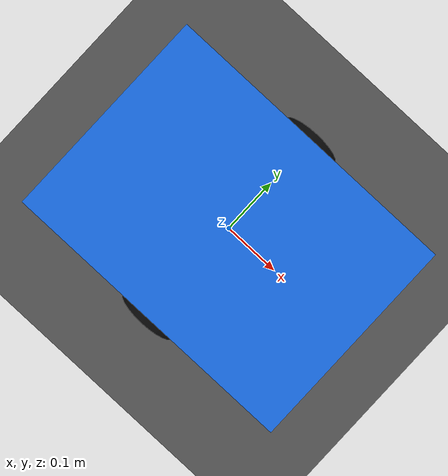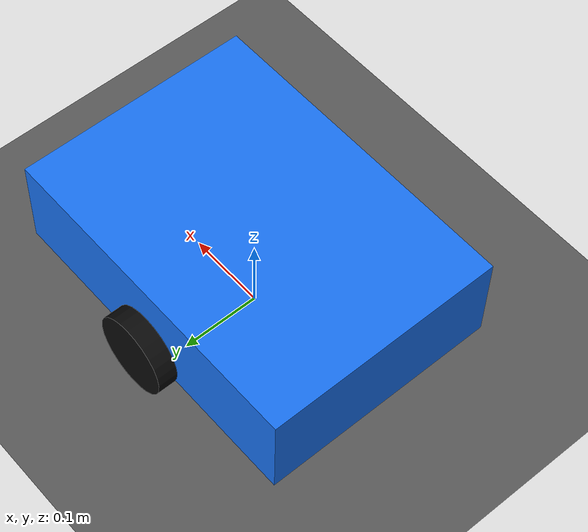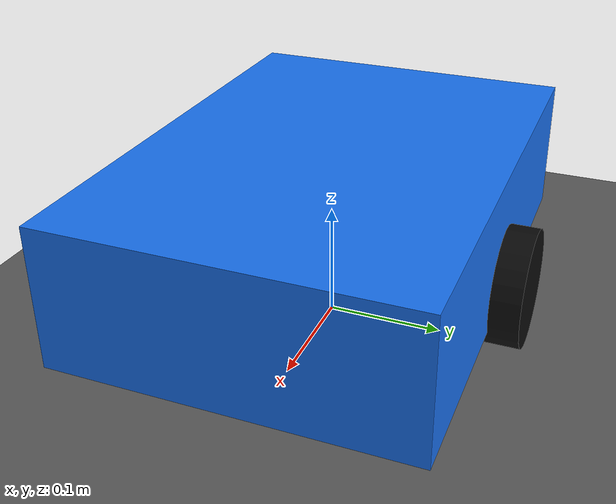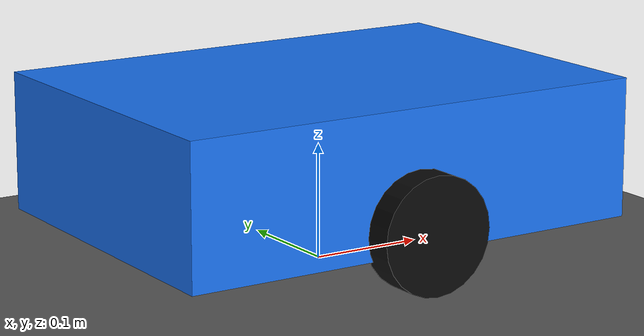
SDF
<?xml version="1.0"?>
<sdf version="1.9">
  <world name="smartcar_world">
    <gravity>0 0 -9.81</gravity>

    <physics name="1ms" type="ode">
      <max_step_size>0.001</max_step_size>
      <real_time_factor>1.0</real_time_factor>
      <real_time_update_rate>1000</real_time_update_rate>
    </physics>

    <plugin filename="gz-sim-physics-system"
            name="gz::sim::systems::Physics"/>
    <plugin filename="gz-sim-user-commands-system"
            name="gz::sim::systems::UserCommands"/>
    <plugin filename="gz-sim-scene-broadcaster-system"
            name="gz::sim::systems::SceneBroadcaster"/>

    <scene>
      <ambient>0.4 0.4 0.4 1</ambient>
      <background>0.08 0.08 0.08 1</background>
      <shadows>true</shadows>
    </scene>

    <light name="sun" type="directional">
      <cast_shadows>true</cast_shadows>
      <pose>0 0 10 0 0 0</pose>
      <diffuse>0.8 0.8 0.8 1</diffuse>
      <specular>0.2 0.2 0.2 1</specular>
      <direction>-0.5 0.5 -1</direction>
    </light>

    <model name="smartcar">
      <pose>0 0 0.10 0 0 0</pose>

      <link name="base_link">
        <inertial>
          <mass>2.0</mass>
          <inertia>
            <ixx>0.017</ixx>
            <iyy>0.035</iyy>
            <izz>0.046</izz>
            <ixy>0</ixy>
            <ixz>0</ixz>
            <iyz>0</iyz>
          </inertia>
        </inertial>
        <collision name="base_collision">
          <geometry>
            <box>
              <size>0.42 0.30 0.12</size>
            </box>
          </geometry>
        </collision>
        <visual name="base_visual">
          <geometry>
            <box>
              <size>0.42 0.30 0.12</size>
            </box>
          </geometry>
          <material>
            <ambient>0.1 0.35 0.85 1</ambient>
            <diffuse>0.1 0.45 0.95 1</diffuse>
            <specular>0.2 0.2 0.2 1</specular>
          </material>
        </visual>
      </link>

      <link name="left_wheel">
        <pose>0 0.16 -0.04 1.5708 0 0</pose>
        <inertial>
          <mass>0.25</mass>
          <inertia>
            <ixx>0.0004</ixx>
            <iyy>0.0004</iyy>
            <izz>0.0003</izz>
            <ixy>0</ixy>
            <ixz>0</ixz>
            <iyz>0</iyz>
          </inertia>
        </inertial>
        <collision name="left_wheel_collision">
          <geometry>
            <cylinder>
              <radius>0.05</radius>
              <length>0.03</length>
            </cylinder>
          </geometry>
        </collision>
        <visual name="left_wheel_visual">
          <geometry>
            <cylinder>
              <radius>0.05</radius>
              <length>0.03</length>
            </cylinder>
          </geometry>
          <material>
            <ambient>0.02 0.02 0.02 1</ambient>
            <diffuse>0.04 0.04 0.04 1</diffuse>
          </material>
        </visual>
      </link>

      <link name="right_wheel">
        <pose>0 -0.16 -0.04 1.5708 0 0</pose>
        <inertial>
          <mass>0.25</mass>
          <inertia>
            <ixx>0.0004</ixx>
            <iyy>0.0004</iyy>
            <izz>0.0003</izz>
            <ixy>0</ixy>
            <ixz>0</ixz>
            <iyz>0</iyz>
          </inertia>
        </inertial>
        <collision name="right_wheel_collision">
          <geometry>
            <cylinder>
              <radius>0.05</radius>
              <length>0.03</length>
            </cylinder>
          </geometry>
        </collision>
        <visual name="right_wheel_visual">
          <geometry>
            <cylinder>
              <radius>0.05</radius>
              <length>0.03</length>
            </cylinder>
          </geometry>
          <material>
            <ambient>0.02 0.02 0.02 1</ambient>
            <diffuse>0.04 0.04 0.04 1</diffuse>
          </material>
        </visual>
      </link>

      <link name="caster">
        <pose>-0.15 0 -0.055 0 0 0</pose>
        <inertial>
          <mass>0.10</mass>
          <inertia>
            <ixx>0.00008</ixx>
            <iyy>0.00008</iyy>
            <izz>0.00008</izz>
            <ixy>0</ixy>
            <ixz>0</ixz>
            <iyz>0</iyz>
          </inertia>
        </inertial>
        <collision name="caster_collision">
          <geometry>
            <sphere>
              <radius>0.035</radius>
            </sphere>
          </geometry>
        </collision>
        <visual name="caster_visual">
          <geometry>
            <sphere>
              <radius>0.035</radius>
            </sphere>
          </geometry>
          <material>
            <ambient>0.25 0.25 0.25 1</ambient>
            <diffuse>0.4 0.4 0.4 1</diffuse>
          </material>
        </visual>
      </link>

      <joint name="left_wheel_joint" type="revolute">
        <parent>base_link</parent>
        <child>left_wheel</child>
        <axis>
          <!-- The wheel link is rotated about X, so its local Z is the axle. -->
          <xyz>0 0 1</xyz>
          <limit>
            <effort>10</effort>
            <velocity>20</velocity>
          </limit>
        </axis>
      </joint>

      <joint name="right_wheel_joint" type="revolute">
        <parent>base_link</parent>
        <child>right_wheel</child>
        <axis>
          <xyz>0 0 1</xyz>
          <limit>
            <effort>10</effort>
            <velocity>20</velocity>
          </limit>
        </axis>
      </joint>

      <joint name="caster_joint" type="ball">
        <parent>base_link</parent>
        <child>caster</child>
      </joint>

      <plugin filename="gz-sim-diff-drive-system"
              name="gz::sim::systems::DiffDrive">
        <left_joint>left_wheel_joint</left_joint>
        <right_joint>right_wheel_joint</right_joint>
        <wheel_separation>0.32</wheel_separation>
        <wheel_radius>0.05</wheel_radius>
        <topic>/cmd_vel</topic>
        <odom_topic>/odom</odom_topic>
        <tf_topic>/tf</tf_topic>
        <frame_id>odom</frame_id>
        <child_frame_id>base_link</child_frame_id>
        <odom_publish_frequency>30</odom_publish_frequency>
      </plugin>
    </model>

    <model name="ground">
      <static>true</static>
      <link name="ground_link">
        <collision name="ground_collision">
          <geometry>
            <plane>
              <normal>0 0 1</normal>
              <size>20 20</size>
            </plane>
          </geometry>
        </collision>
        <visual name="ground_visual">
          <geometry>
            <plane>
              <normal>0 0 1</normal>
              <size>20 20</size>
            </plane>
          </geometry>
          <material>
            <ambient>0.25 0.25 0.25 1</ambient>
            <diffuse>0.35 0.35 0.35 1</diffuse>
          </material>
        </visual>
      </link>
    </model>
  </world>
</sdf>
